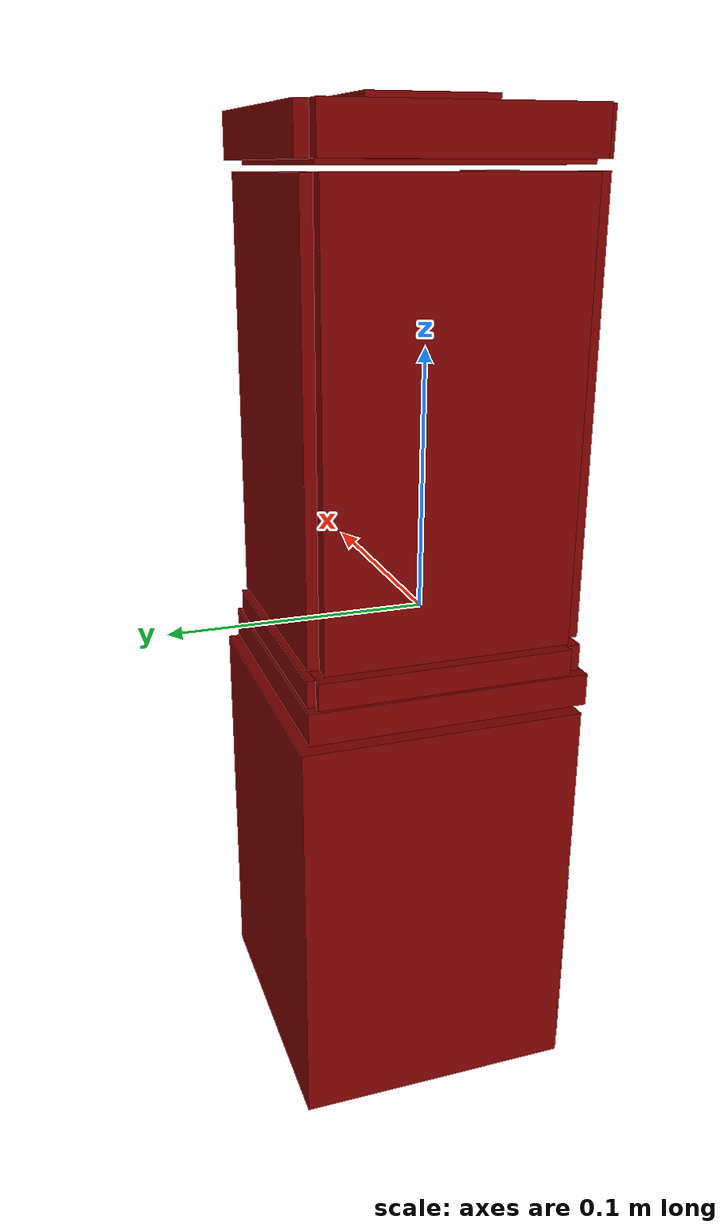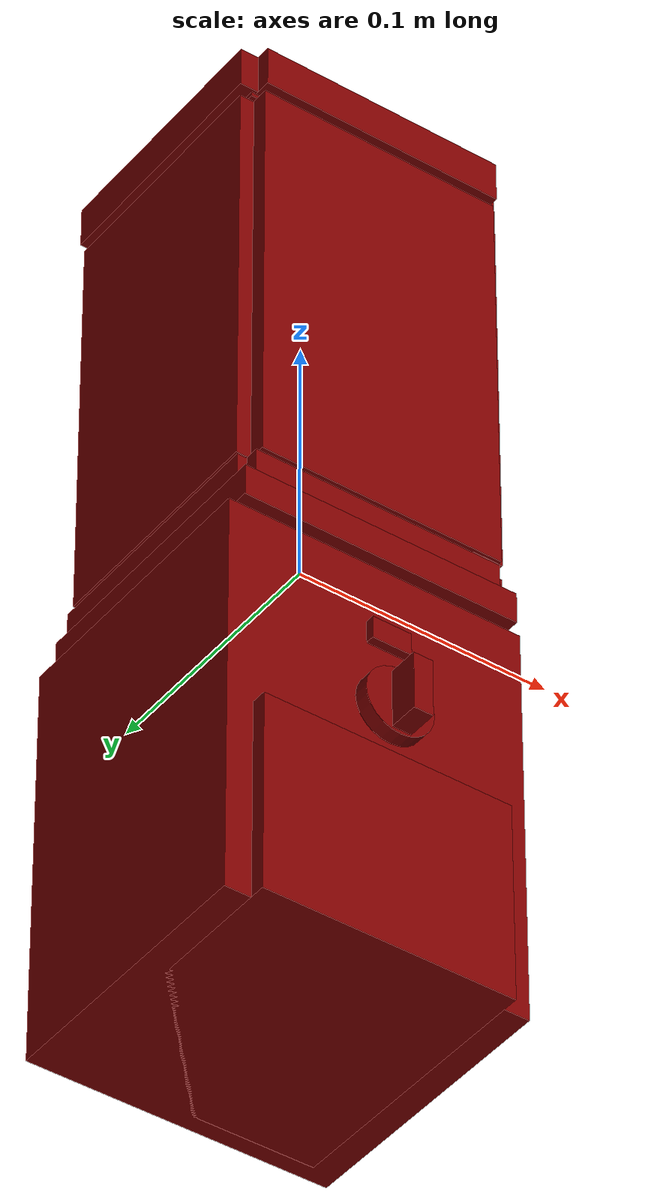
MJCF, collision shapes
<?xml version='1.0' encoding='UTF-8'?>
<mujoco model="model">
  <option timestep="0.002" gravity="0.0 0.0 -9.81"/>
  <compiler angle="radian"/>
  <asset>
    <mesh file="visuals/Blade001.obj" name="Blade001_vis"/>
    <mesh file="visuals/Body001.obj" name="Body001_vis"/>
    <mesh file="visuals/Button001.obj" name="Button001_vis"/>
    <mesh file="visuals/Jug001.obj" name="Jug001_vis"/>
    <mesh file="visuals/Jug001_Clear.obj" name="Jug001_Clear_vis"/>
    <mesh file="visuals/Knob001.obj" name="Knob001_vis"/>
    <mesh file="visuals/Lid001.obj" name="Lid001_vis"/>
    <texture file="visuals/T_BC001.png" name="Body001_material" type="2d"/>
    <material name="Body001_material" rgba="1 1 1 1.0" texture="Body001_material" shininess="0.1" specular="4"/>
    <texture file="visuals/T_BC001.png" name="Button001_material" type="2d"/>
    <material name="Button001_material" rgba="1 1 1 1.0" texture="Button001_material" shininess="0.1" specular="4"/>
    <material name="Jug001_Clear_material" rgba="0.24127569794654846 0.24127569794654846 0.24127569794654846 0.800000011920929" shininess="0.2512328028678894" specular="0.3103448502657381"/>
    <texture file="visuals/T_BC001.png" name="Blade001_material" type="2d"/>
    <material name="Blade001_material" rgba="1 1 1 1.0" texture="Blade001_material" shininess="0.1" specular="4"/>
    <texture file="visuals/T_BC001.png" name="Jug001_material" type="2d"/>
    <material name="Jug001_material" rgba="1 1 1 1.0" texture="Jug001_material" shininess="0.1" specular="4"/>
    <texture file="visuals/T_BC001.png" name="Lid001_material" type="2d"/>
    <material name="Lid001_material" rgba="1 1 1 1.0" texture="Lid001_material" shininess="0.1" specular="4"/>
    <texture file="visuals/T_BC001.png" name="Knob001_material" type="2d"/>
    <material name="Knob001_material" rgba="1 1 1 1.0" texture="Knob001_material" shininess="0.1" specular="4"/>
  </asset>
  <default>
    <default class="visual">
      <geom conaffinity="0" contype="0" group="1" type="mesh"/>
    </default>
    <default class="collision">
      <geom group="0" rgba="0.5 0 0 0.5"/>
    </default>
    <default class="spawn">
      <geom group="0" rgba="1 1 1 0.5" contype="0" conaffinity="0"/>
      <site group="0" rgba="1 1 1 0.5"/>
    </default>
    <default class="region">
      <geom group="1" conaffinity="0" contype="0" rgba="0 1 0 0"/>
    </default>
  </default>
  <worldbody>
    <body>
      <body name="object">
        <geom mesh="Body001_vis" type="mesh" solimp="0.998 0.998 0.001" solref="0.001 1" friction="0.95 0.3 0.1" class="visual" material="Body001_material"/>
        <geom class="collision" type="box" pos="-0.00008311 0.01147959 -0.10564083" size="0.05748409032821655 0.05378222092986107 0.0782916247844696" quat="1.0 0.0 0.0 0.0"/>
        <geom class="collision" type="box" pos="-0.00000003 0.00524253 -0.14537154" size="0.04769057780504227 0.053517669439315796 0.0385608971118927" quat="1.0 0.0 0.0 0.0"/>
        <body name="Button001">
          <joint axis="0.0 1.0 0.0" pos="-0.00000011 -0.04843722 -0.06156465" limited="true" name="Button001_joint" range="0.0 0.001" type="slide" damping="1" frictionloss="1" armature=".01" stiffness="0.05"/>
          <geom mesh="Button001_vis" type="mesh" solimp="0.998 0.998 0.001" solref="0.001 1" friction="0.95 0.3 0.1" class="visual" material="Button001_material"/>
          <geom class="collision" type="box" pos="-0.00000012 -0.04881312 -0.06156476" size="0.007550617679953575 0.0017081890255212784 0.004386723041534424" quat="1.0 0.0 0.0 0.0"/>
        </body>
        <body name="Jug001_Clear">
          <geom class="region" name="reg_int" type="box" pos="-0.0002882400000000021 0.00774273 0.09551412000000001" size="0.03748014 0.036991880000000005 0.062294390000000005"/>
          <joint axis="0.0 0.0 1.0" pos="0.00063777 0.00706599 0.06564770" limited="true" name="Jug001_Clear_joint" range="0.0 0.05" type="slide" damping="1" frictionloss="1" armature=".01" stiffness="0.05"/>
          <geom mesh="Jug001_Clear_vis" type="mesh" solimp="0.998 0.998 0.001" solref="0.001 1" friction="0.95 0.3 0.1" class="visual" material="Jug001_Clear_material"/>
          <geom class="collision" type="box" pos="0.00131297 -0.03849024 0.07956196" size="0.047682031989097595 0.0059927115216851234 0.08080093562602997" quat="1.0 0.0 0.0 0.0"/>
          <geom class="collision" type="box" pos="0.04451244 0.00610823 0.07935335" size="0.005983995273709297 0.04916241392493248 0.08059234917163849" quat="1.0 0.0 0.0 0.0"/>
          <geom class="collision" type="box" pos="-0.00054073 0.05357564 0.07942743" size="0.04497158154845238 0.00598710123449564 0.08066648989915848" quat="1.0 0.0 0.0 0.0"/>
          <geom class="collision" type="box" pos="-0.04592577 0.00865704 0.07950017" size="0.005990144331008196 0.04657210037112236 0.0807393342256546" quat="1.0 0.0 0.0 0.0"/>
          <geom class="collision" type="box" pos="-0.00133092 0.00758660 -0.00576303" size="0.03892234340310097 0.03759143874049187 0.0006653714226558805" quat="1.0 0.0 0.0 0.0"/>
          <body name="Blade001">
            <joint axis="0.0 0.0 1.0" pos="-0.00001284 0.00806925 0.01573055" limited="false" name="Blade001_joint" range="0 360" type="hinge" damping="1" frictionloss="1" armature=".01" stiffness="0.05"/>
            <geom mesh="Blade001_vis" type="mesh" solimp="0.998 0.998 0.001" solref="0.001 1" friction="0.95 0.3 0.1" class="visual" material="Blade001_material"/>
            <geom class="collision" type="box" pos="0.00075530 0.00803136 0.01775066" size="0.007751177065074444 0.007751177065074444 0.000493193103466183" quat="1.0 0.0 0.0 0.0"/>
            <geom class="collision" type="box" pos="-0.00006391 0.02200975 0.02075417" size="0.004649334121495485 0.006977303884923458 0.0005624762270599604" quat="0.9774072766304016 0.21136470139026642 0.0 0.0"/>
            <geom class="collision" type="box" pos="-0.00006391 0.03361954 0.02602175" size="0.0023086860310286283 0.006977303884923458 0.0005624761688522995" quat="0.9774072766304016 0.21136470139026642 0.0 0.0"/>
            <geom class="collision" type="box" pos="-0.01479433 0.00816089 0.01296738" size="0.004649334121495485 0.009789085015654564 0.0005624762852676213" quat="0.6795143485069275 -0.19560261070728302 -0.19560261070728302 0.6795141696929932"/>
            <geom class="collision" type="box" pos="-0.02797359 0.00816089 0.00469440" size="0.0023086860310286283 0.006977303884923458 0.0005624761106446385" quat="0.6795143485069275 -0.19560259580612183 -0.1956026256084442 0.6795141696929932"/>
            <geom class="collision" type="box" pos="-0.00003605 -0.00649828 0.02093816" size="0.004649334121495485 0.006977303884923458 0.0005624762270599604" quat="7.37921936888597e-08 1.5957596133375773e-08 0.21136470139026642 0.9774072766304016"/>
            <geom class="collision" type="box" pos="-0.00003605 -0.01810807 0.02620574" size="0.0023086860310286283 0.006977303884923458 0.0005624761688522995" quat="7.37921936888597e-08 1.5957596133375773e-08 0.2113647162914276 0.9774072766304016"/>
            <geom class="collision" type="box" pos="0.01469438 0.00820850 0.01315137" size="0.004649334121495485 0.009789085015654564 0.0005624762852676213" quat="0.6795143485069275 -0.1956026405096054 0.19560255110263824 -0.6795141696929932"/>
            <geom class="collision" type="box" pos="0.02787363 0.00820849 0.00487839" size="0.0023086860310286283 0.006977303884923458 0.0005624761106446385" quat="0.6795143485069275 -0.19560261070728302 0.19560261070728302 -0.6795141696929932"/>
            <geom class="collision" type="cylinder" pos="0.00006782 0.00798056 0.01237917" size="0.006157022900879383 0.005274960771203041" quat="1.0 0.0 0.0 0.0"/>
          </body>
          <body name="Jug001">
            <geom mesh="Jug001_vis" type="mesh" solimp="0.998 0.998 0.001" solref="0.001 1" friction="0.95 0.3 0.1" class="visual" material="Jug001_material"/>
            <geom class="collision" type="box" pos="-0.04609489 0.00911048 -0.00983476" size="0.006394772324711084 0.04842328280210495 0.006411881186068058" quat="1.0 0.0 0.0 0.0"/>
            <geom class="collision" type="box" pos="0.04653638 0.00911048 -0.00983476" size="0.006394772324711084 0.04842328280210495 0.006411881186068058" quat="1.0 0.0 0.0 0.0"/>
            <geom class="collision" type="box" pos="-0.00043082 0.05444177 -0.00983476" size="0.04842328280210495 0.006394779775291681 0.006411881186068058" quat="1.0 0.0 0.0 0.0"/>
            <geom class="collision" type="box" pos="-0.00043082 -0.03827661 -0.00983476" size="0.04842328280210495 0.006394779775291681 0.006411881186068058" quat="1.0 0.0 0.0 0.0"/>
            <geom class="collision" type="cylinder" pos="-0.00000000 0.00826755 -0.01121204" size="0.020905563607811928 0.0034535357262939215" quat="1.0 0.0 0.0 0.0"/>
            <geom class="collision" type="cylinder" pos="-0.00000000 0.00826755 -0.00010412" size="0.009490281343460083 0.003182104090228677" quat="1.0 0.0 0.0 0.0"/>
            <geom class="collision" type="box" pos="0.00131297 -0.03849024 0.07956196" size="0.047682031989097595 0.0059927115216851234 0.08080093562602997" quat="1.0 0.0 0.0 0.0"/>
            <geom class="collision" type="box" pos="0.04451244 0.00610823 0.07935335" size="0.005983995273709297 0.04916241392493248 0.08059234917163849" quat="1.0 0.0 0.0 0.0"/>
            <geom class="collision" type="box" pos="-0.00054073 0.05357564 0.07942743" size="0.04497158154845238 0.00598710123449564 0.08066648989915848" quat="1.0 0.0 0.0 0.0"/>
            <geom class="collision" type="box" pos="-0.04592577 0.00865704 0.07950017" size="0.005990144331008196 0.04657210037112236 0.0807393342256546" quat="1.0 0.0 0.0 0.0"/>
            <geom class="collision" type="box" pos="-0.00008311 0.00792829 -0.01976543" size="0.053785525262355804 0.05378224700689316 0.006159114185720682" quat="1.0 0.0 0.0 0.0"/>
            <geom class="collision" type="box" pos="-0.00133092 0.00758660 -0.00576303" size="0.03892234340310097 0.03759143874049187 0.0006653714226558805" quat="1.0 0.0 0.0 0.0"/>
          </body>
          <body name="Lid001">
            <joint axis="0.0 0.0 1.0" pos="0.00202406 0.00562569 0.17618549" limited="true" name="Lid001_joint" range="0.0 0.05" type="slide" damping="1" frictionloss="1" armature=".01" stiffness="0.05"/>
            <geom mesh="Lid001_vis" type="mesh" solimp="0.998 0.998 0.001" solref="0.001 1" friction="0.95 0.3 0.1" class="visual" material="Lid001_material"/>
            <geom class="collision" type="box" pos="-0.00068565 0.00847858 0.17390500" size="0.023568520322442055 0.023568520322442055 0.010026845149695873" quat="1.0 0.0 0.0 0.0"/>
            <geom class="collision" type="box" pos="-0.00068565 0.00847858 0.16402930" size="0.04685448855161667 0.04685448855161667 0.001828211359679699" quat="1.0 0.0 0.0 0.0"/>
            <geom class="collision" type="box" pos="0.00211768 0.05358702 0.17209217" size="0.04791790992021561 0.00750143313780427 0.008214022032916546" quat="1.0 0.0 0.0 0.0"/>
            <geom class="collision" type="box" pos="0.00211768 -0.03760176 0.17209217" size="0.04791790992021561 0.00750143313780427 0.008214022032916546" quat="1.0 0.0 0.0 0.0"/>
            <geom class="collision" type="box" pos="0.04555719 0.00834568 0.17209217" size="0.007501436863094568 0.04791790992021561 0.008214022032916546" quat="1.0 0.0 0.0 0.0"/>
            <geom class="collision" type="box" pos="-0.04538229 0.00834568 0.17209217" size="0.007501436863094568 0.04791790992021561 0.008214022032916546" quat="1.0 0.0 0.0 0.0"/>
          </body>
        </body>
        <body name="Knob001">
          <joint axis="0.0 1.0 0.0" pos="0.00016407 -0.05350824 -0.09123564" limited="true" name="Knob001_joint" range="0.0 3.9269908169872414" type="hinge" damping="0.05" armature="0.001"/>
          <geom mesh="Knob001_vis" type="mesh" solimp="0.998 0.998 0.001" solref="0.001 1" friction="0.95 0.3 0.1" class="visual" material="Knob001_material"/>
          <geom class="collision" type="cylinder" pos="0.00017565 -0.05136684 -0.09128979" size="0.01323349867016077 0.002916333032771945" quat="0.7071067094802856 0.70710688829422 0.0 0.0"/>
          <geom class="collision" type="box" pos="0.00058524 -0.05913544 -0.09185055" size="0.003690812736749649 0.006763341836631298 0.011243381537497044" quat="1.0 0.0 0.0 0.0"/>
        </body>
        <geom class="region" name="reg_main" type="box" pos="0.0 0.008090964999999999 -5.5000000000055005e-06" size="0.05908979 0.059068955 0.18495181"/>
      </body>
    </body>
  </worldbody>
  <actuator>
    <motor name="Button001_joint_actuator" joint="Button001_joint" gear="0.5"/>
    <motor name="Jug001_Clear_joint_actuator" joint="Jug001_Clear_joint" gear="0.5"/>
    <motor name="Knob001_joint_actuator" joint="Knob001_joint" gear="0.5"/>
    <motor name="Blade001_joint_actuator" joint="Blade001_joint" gear="50"/>
    <motor name="Lid001_joint_actuator" joint="Lid001_joint" gear="0.5"/>
  </actuator>
</mujoco>
